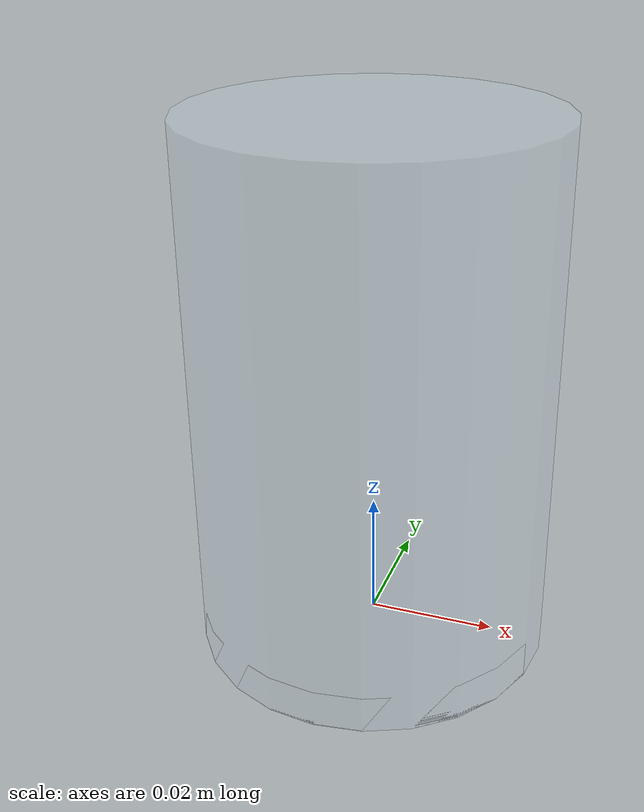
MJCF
<mujoco model="mug_table">
  <compiler angle="degree"/>

  <asset>
    <material name="glass"
              rgba="0.8 0.9 1 0.2"
              specular="1"
              shininess="1"
              reflectance="0.2"/>
  </asset>

  <worldbody>
    <body name="mug" pos="0 0 0.042">
      <geom name="mug_outer_visual" type="cylinder" size="0.028 0.042"
            pos="0 0 -0.002" material="glass" mass="0"
            contype="0" conaffinity="0"/>
      <geom name="mug_inner_visual" type="cylinder" size="0.0235 0.037"
            pos="0 0 -0.004" rgba="1 1 1 0.003" mass="0"
            contype="0" conaffinity="0"/>
      <geom name="mug_base_visual" type="cylinder" size="0.028 0.003"
            pos="0 0 -0.041" material="glass" mass="0"
            contype="0" conaffinity="0"/>
      <!-- The base spans the glass's footprint and the walls stand on it inside the rim, so the
           collision hull has no edge below or outside the base for the glass to rest on. -->
      <geom name="mug_bottom_col" type="cylinder" size="0.028 0.004"
            pos="0 0 -0.038" mass="0.08" rgba="1 1 1 0"
            contype="1" conaffinity="1" condim="4"/>
      <geom name="mug_side_left_col" type="box" size="0.0015 0.015 0.036"
            pos="-0.022 0 0.002" mass="0.03" rgba="1 1 1 0"
            contype="1" conaffinity="1" condim="4"/>
      <geom name="mug_side_right_col" type="box" size="0.0015 0.015 0.036"
            pos="0.022 0 0.002" mass="0.03" rgba="1 1 1 0"
            contype="1" conaffinity="1" condim="4"/>
      <geom name="mug_back_col" type="box" size="0.015 0.0015 0.036"
            pos="0 -0.022 0.002" mass="0.03" rgba="1 1 1 0"
            contype="1" conaffinity="1" condim="4"/>
      <geom name="mug_front_col" type="box" size="0.015 0.0015 0.036"
            pos="0 0.022 0.002" mass="0.03" rgba="1 1 1 0"
            contype="1" conaffinity="1" condim="4"/>
    </body>
  </worldbody>
</mujoco>
